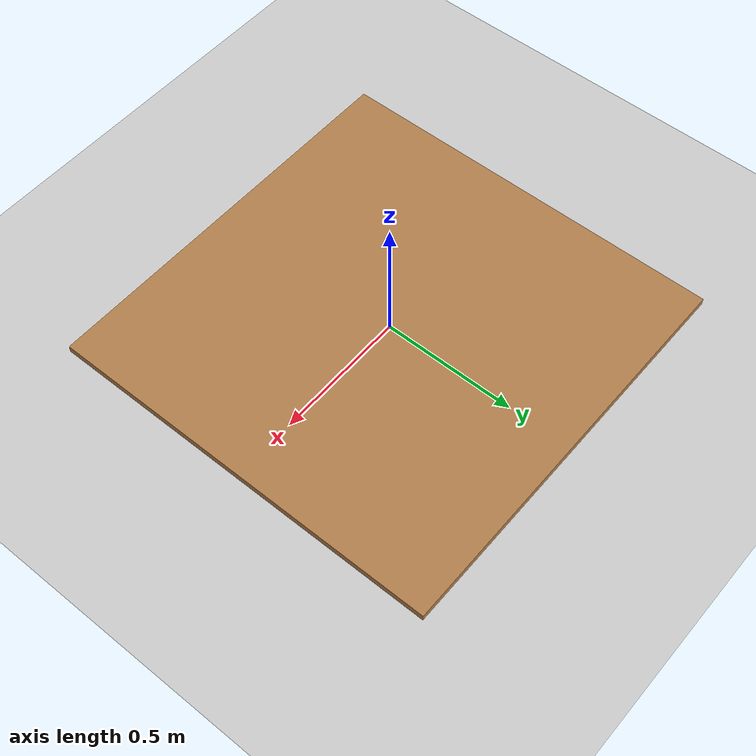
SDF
<?xml version="1.0"?>
<sdf version="1.6">
  <world name="ur5_world">

    <!-- Physics settings for realistic simulation -->
    <physics type="ode">
      <max_step_size>0.001</max_step_size>
      <real_time_factor>1</real_time_factor>
      <real_time_update_rate>1000</real_time_update_rate>
      <ode>
        <solver>
          <type>quick</type>
          <iters>50</iters>
          <sor>1.3</sor>
        </solver>
        <constraints>
          <cfm>0.0</cfm>
          <erp>0.2</erp>
          <contact_max_correcting_vel>100.0</contact_max_correcting_vel>
          <contact_surface_layer>0.001</contact_surface_layer>
        </constraints>
      </ode>
    </physics>

    <!-- Atmospheric lighting -->
    <scene>
      <ambient>0.4 0.4 0.4 1</ambient>
      <background>0.7 0.8 0.9 1</background>
      <shadows>true</shadows>
      <grid>true</grid>
    </scene>

    <!-- Sun light for realistic shadows -->
    <light name="sun" type="directional">
      <cast_shadows>true</cast_shadows>
      <pose>0 0 10 0 0 0</pose>
      <diffuse>0.8 0.8 0.8 1</diffuse>
      <specular>0.2 0.2 0.2 1</specular>
      <attenuation>
        <range>1000</range>
        <constant>0.9</constant>
        <linear>0.01</linear>
        <quadratic>0.001</quadratic>
      </attenuation>
      <direction>-0.5 0.1 -0.9</direction>
    </light>

    <!-- Additional point light for better illumination -->
    <light name="point_light_1" type="point">
      <pose>2 2 3 0 0 0</pose>
      <diffuse>0.5 0.5 0.5 1</diffuse>
      <specular>0.1 0.1 0.1 1</specular>
      <attenuation>
        <range>20</range>
        <constant>0.5</constant>
        <linear>0.01</linear>
        <quadratic>0.001</quadratic>
      </attenuation>
      <cast_shadows>false</cast_shadows>
    </light>

    <light name="point_light_2" type="point">
      <pose>-2 -2 3 0 0 0</pose>
      <diffuse>0.5 0.5 0.5 1</diffuse>
      <specular>0.1 0.1 0.1 1</specular>
      <attenuation>
        <range>20</range>
        <constant>0.5</constant>
        <linear>0.01</linear>
        <quadratic>0.001</quadratic>
      </attenuation>
      <cast_shadows>false</cast_shadows>
    </light>

    <!-- Ground plane with grid texture -->
    <model name="ground_plane">
      <static>true</static>
      <link name="link">
        <collision name="collision">
          <geometry>
            <plane>
              <normal>0 0 1</normal>
              <size>100 100</size>
            </plane>
          </geometry>
          <surface>
            <friction>
              <ode>
                <mu>100</mu>
                <mu2>50</mu2>
              </ode>
            </friction>
          </surface>
        </collision>
        <visual name="visual">
          <cast_shadows>false</cast_shadows>
          <geometry>
            <plane>
              <normal>0 0 1</normal>
              <size>100 100</size>
            </plane>
          </geometry>
          <material>
            <script>
              <uri>file://media/materials/scripts/gazebo.material</uri>
              <name>Gazebo/Grey</name>
            </script>
          </material>
        </visual>
      </link>
    </model>

    <!-- Work table -->
    <model name="work_table">
      <static>true</static>
      <pose>0 0 0 0 0 0</pose>
      <link name="link">
        <collision name="collision">
          <geometry>
            <box>
              <size>1.5 1.5 0.05</size>
            </box>
          </geometry>
        </collision>
        <visual name="visual">
          <geometry>
            <box>
              <size>1.5 1.5 0.05</size>
            </box>
          </geometry>
          <material>
            <script>
              <uri>file://media/materials/scripts/gazebo.material</uri>
              <name>Gazebo/Wood</name>
            </script>
          </material>
        </visual>
      </link>
    </model>

    <!-- GUI settings -->
    <gui fullscreen='0'>
      <camera name='user_camera'>
        <pose>2.5 -2.5 2.0 0 0.4 2.356</pose>
        <view_controller>orbit</view_controller>
      </camera>
    </gui>

  </world>
</sdf>
